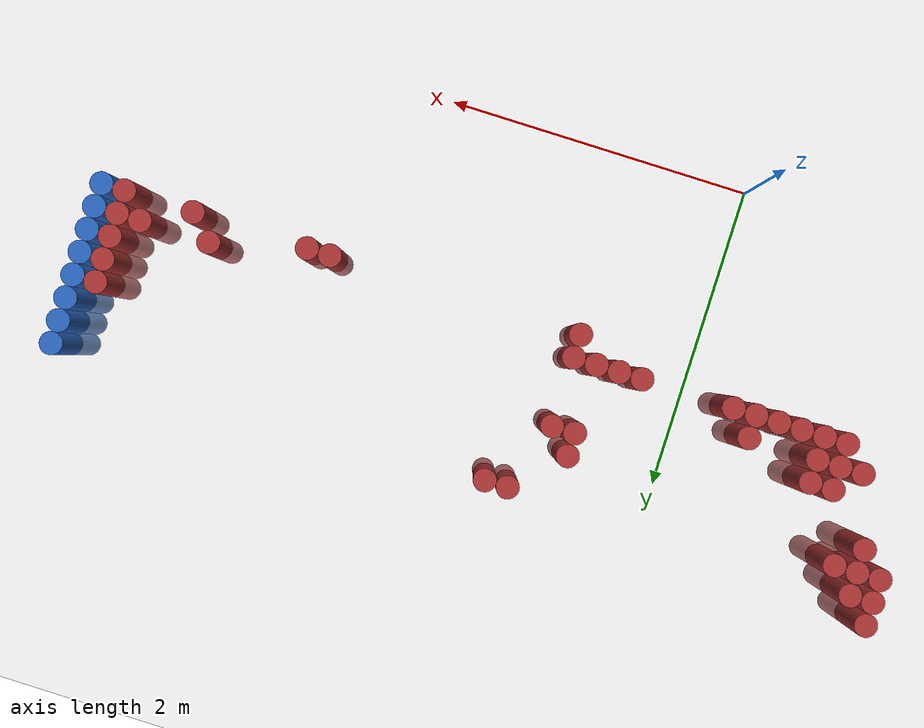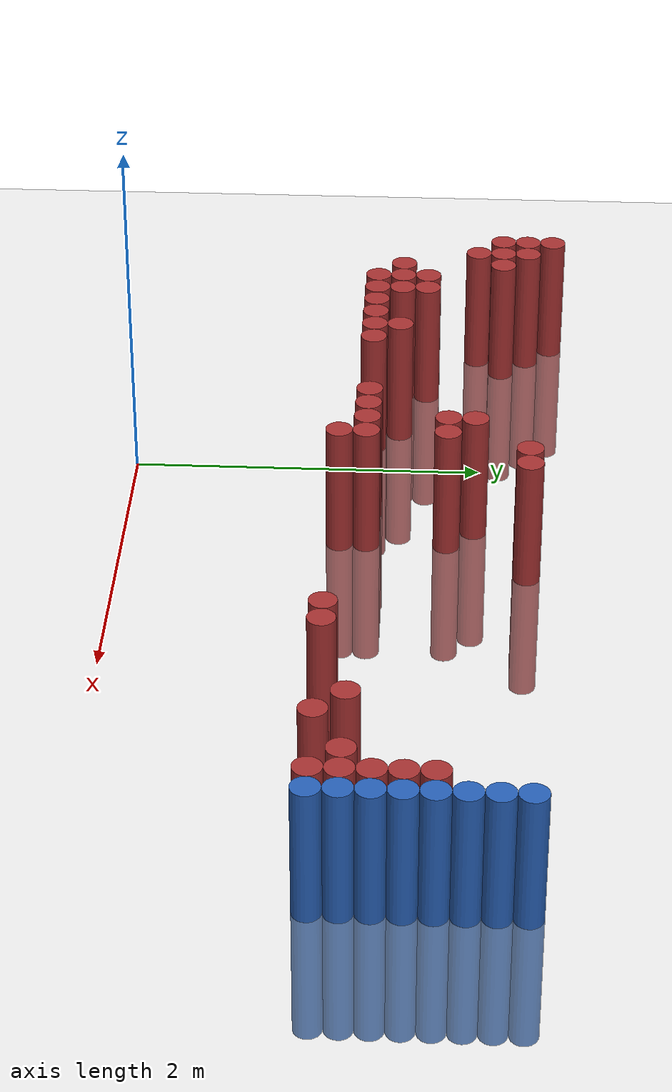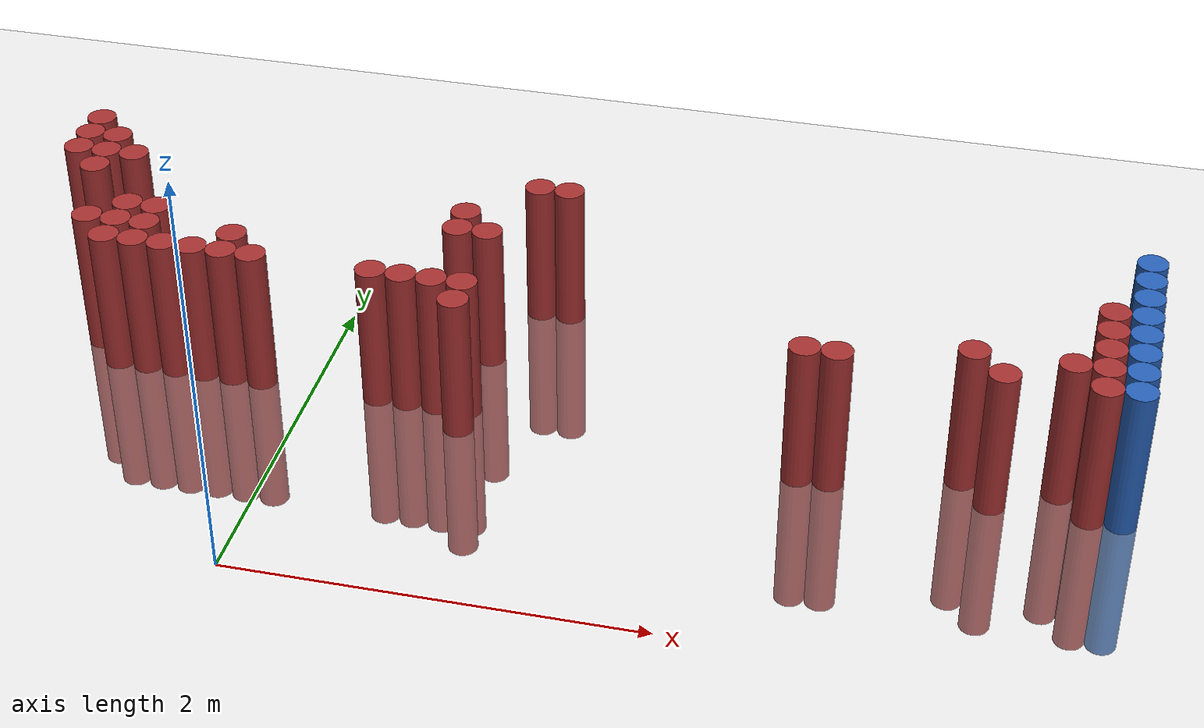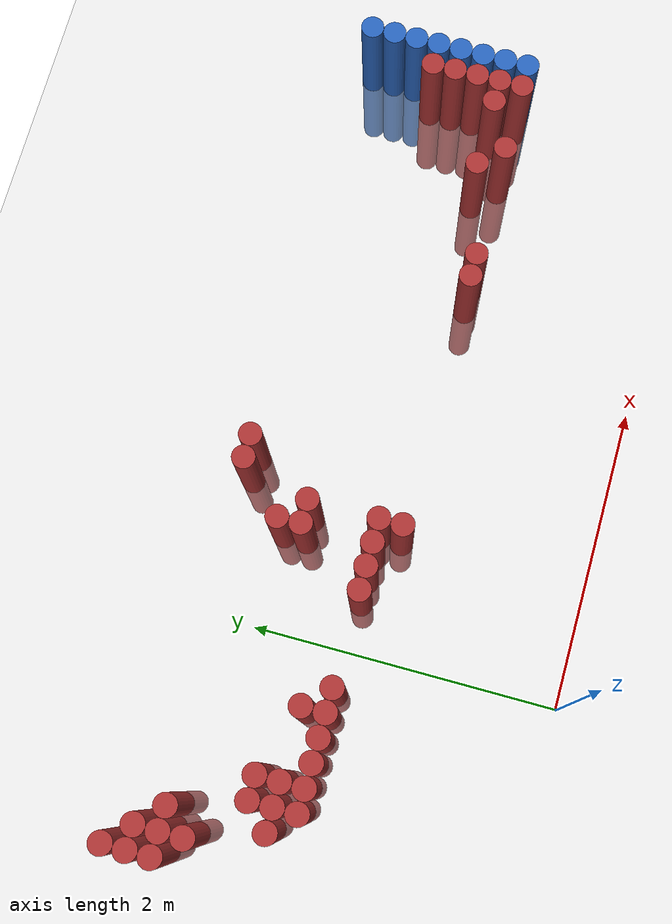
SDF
<sdf version="1.6">
 <world name="default">
  <model name="ground_plane">
   <static>1</static>
   <link name="link">
    <collision name="collision">
     <geometry><plane><normal>0 0 1</normal><size>100 100</size></plane></geometry>
     <surface><friction><ode><mu>100</mu><mu2>50</mu2></ode></friction></surface>
    </collision>
    <visual name="visual">
     <cast_shadows>0</cast_shadows>
     <geometry><plane><normal>0 0 1</normal><size>100 100</size></plane></geometry>
     <material>
      <script><uri>file://media/materials/scripts/gazebo.material</uri><name>Gazebo/Grey</name></script>
     </material>
    </visual>
   </link>
  </model>
  <model name="unit_cylinder_132">
   <static>1</static>
   <pose>3.925000 1.375000 0.000000 0.000000 0.000000 0.000000</pose>
   <link name="link">
    <inertial>
     <mass>1</mass>
     <inertia><ixx>0.145833</ixx><ixy>0</ixy><ixz>0</ixz><iyy>0.145833</iyy><iyz>0</iyz><izz>0.125</izz></inertia>
    </inertial>
    <collision name="collision">
     <geometry><cylinder><radius>0.075000</radius><length>1.5</length></cylinder></geometry>
    </collision>
    <visual name="visual">
     <geometry><cylinder><radius>0.075000</radius><length>1.5</length></cylinder></geometry>
     <material>
      <ambient>0.152000 0.379000 0.720000 1</ambient>
      <diffuse>0.152000 0.379000 0.720000 1</diffuse>
     </material>
     <material>
      <script><name>Gazebo/Grey</name><uri>file://media/materials/scripts/gazebo.material</uri></script>
     </material>
    </visual>
   </link>
  </model>
  <model name="unit_cylinder_134">
   <static>1</static>
   <pose>3.925000 1.525000 0.000000 0.000000 0.000000 0.000000</pose>
   <link name="link">
    <inertial>
     <mass>1</mass>
     <inertia><ixx>0.145833</ixx><ixy>0</ixy><ixz>0</ixz><iyy>0.145833</iyy><iyz>0</iyz><izz>0.125</izz></inertia>
    </inertial>
    <collision name="collision">
     <geometry><cylinder><radius>0.075000</radius><length>1.5</length></cylinder></geometry>
    </collision>
    <visual name="visual">
     <geometry><cylinder><radius>0.075000</radius><length>1.5</length></cylinder></geometry>
     <material>
      <ambient>0.152000 0.379000 0.720000 1</ambient>
      <diffuse>0.152000 0.379000 0.720000 1</diffuse>
     </material>
     <material>
      <script><name>Gazebo/Grey</name><uri>file://media/materials/scripts/gazebo.material</uri></script>
     </material>
    </visual>
   </link>
  </model>
  <model name="unit_cylinder_136">
   <static>1</static>
   <pose>3.925000 1.675000 0.000000 0.000000 0.000000 0.000000</pose>
   <link name="link">
    <inertial>
     <mass>1</mass>
     <inertia><ixx>0.145833</ixx><ixy>0</ixy><ixz>0</ixz><iyy>0.145833</iyy><iyz>0</iyz><izz>0.125</izz></inertia>
    </inertial>
    <collision name="collision">
     <geometry><cylinder><radius>0.075000</radius><length>1.5</length></cylinder></geometry>
    </collision>
    <visual name="visual">
     <geometry><cylinder><radius>0.075000</radius><length>1.5</length></cylinder></geometry>
     <material>
      <ambient>0.152000 0.379000 0.720000 1</ambient>
      <diffuse>0.152000 0.379000 0.720000 1</diffuse>
     </material>
     <material>
      <script><name>Gazebo/Grey</name><uri>file://media/materials/scripts/gazebo.material</uri></script>
     </material>
    </visual>
   </link>
  </model>
  <model name="unit_cylinder_138">
   <static>1</static>
   <pose>3.925000 1.825000 0.000000 0.000000 0.000000 0.000000</pose>
   <link name="link">
    <inertial>
     <mass>1</mass>
     <inertia><ixx>0.145833</ixx><ixy>0</ixy><ixz>0</ixz><iyy>0.145833</iyy><iyz>0</iyz><izz>0.125</izz></inertia>
    </inertial>
    <collision name="collision">
     <geometry><cylinder><radius>0.075000</radius><length>1.5</length></cylinder></geometry>
    </collision>
    <visual name="visual">
     <geometry><cylinder><radius>0.075000</radius><length>1.5</length></cylinder></geometry>
     <material>
      <ambient>0.152000 0.379000 0.720000 1</ambient>
      <diffuse>0.152000 0.379000 0.720000 1</diffuse>
     </material>
     <material>
      <script><name>Gazebo/Grey</name><uri>file://media/materials/scripts/gazebo.material</uri></script>
     </material>
    </visual>
   </link>
  </model>
  <model name="unit_cylinder_140">
   <static>1</static>
   <pose>3.925000 1.975000 0.000000 0.000000 0.000000 0.000000</pose>
   <link name="link">
    <inertial>
     <mass>1</mass>
     <inertia><ixx>0.145833</ixx><ixy>0</ixy><ixz>0</ixz><iyy>0.145833</iyy><iyz>0</iyz><izz>0.125</izz></inertia>
    </inertial>
    <collision name="collision">
     <geometry><cylinder><radius>0.075000</radius><length>1.5</length></cylinder></geometry>
    </collision>
    <visual name="visual">
     <geometry><cylinder><radius>0.075000</radius><length>1.5</length></cylinder></geometry>
     <material>
      <ambient>0.152000 0.379000 0.720000 1</ambient>
      <diffuse>0.152000 0.379000 0.720000 1</diffuse>
     </material>
     <material>
      <script><name>Gazebo/Grey</name><uri>file://media/materials/scripts/gazebo.material</uri></script>
     </material>
    </visual>
   </link>
  </model>
  <model name="unit_cylinder_142">
   <static>1</static>
   <pose>3.925000 2.125000 0.000000 0.000000 0.000000 0.000000</pose>
   <link name="link">
    <inertial>
     <mass>1</mass>
     <inertia><ixx>0.145833</ixx><ixy>0</ixy><ixz>0</ixz><iyy>0.145833</iyy><iyz>0</iyz><izz>0.125</izz></inertia>
    </inertial>
    <collision name="collision">
     <geometry><cylinder><radius>0.075000</radius><length>1.5</length></cylinder></geometry>
    </collision>
    <visual name="visual">
     <geometry><cylinder><radius>0.075000</radius><length>1.5</length></cylinder></geometry>
     <material>
      <ambient>0.152000 0.379000 0.720000 1</ambient>
      <diffuse>0.152000 0.379000 0.720000 1</diffuse>
     </material>
     <material>
      <script><name>Gazebo/Grey</name><uri>file://media/materials/scripts/gazebo.material</uri></script>
     </material>
    </visual>
   </link>
  </model>
  <model name="unit_cylinder_144">
   <static>1</static>
   <pose>3.925000 2.275000 0.000000 0.000000 0.000000 0.000000</pose>
   <link name="link">
    <inertial>
     <mass>1</mass>
     <inertia><ixx>0.145833</ixx><ixy>0</ixy><ixz>0</ixz><iyy>0.145833</iyy><iyz>0</iyz><izz>0.125</izz></inertia>
    </inertial>
    <collision name="collision">
     <geometry><cylinder><radius>0.075000</radius><length>1.5</length></cylinder></geometry>
    </collision>
    <visual name="visual">
     <geometry><cylinder><radius>0.075000</radius><length>1.5</length></cylinder></geometry>
     <material>
      <ambient>0.152000 0.379000 0.720000 1</ambient>
      <diffuse>0.152000 0.379000 0.720000 1</diffuse>
     </material>
     <material>
      <script><name>Gazebo/Grey</name><uri>file://media/materials/scripts/gazebo.material</uri></script>
     </material>
    </visual>
   </link>
  </model>
  <model name="unit_cylinder_320">
   <static>1</static>
   <pose>-1.475000 2.125000 0.000000 0.000000 0.000000 0.000000</pose>
   <link name="link">
    <inertial>
     <mass>1</mass>
     <inertia><ixx>0.145833</ixx><ixy>0</ixy><ixz>0</ixz><iyy>0.145833</iyy><iyz>0</iyz><izz>0.125</izz></inertia>
    </inertial>
    <collision name="collision">
     <geometry><cylinder><radius>0.075000</radius><length>1.5</length></cylinder></geometry>
    </collision>
    <visual name="visual">
     <geometry><cylinder><radius>0.075000</radius><length>1.5</length></cylinder></geometry>
     <material>
      <ambient>0.648000 0.192000 0.192000 1</ambient>
      <diffuse>0.648000 0.192000 0.192000 1</diffuse>
     </material>
     <material>
      <script><name>Gazebo/Grey</name><uri>file://media/materials/scripts/gazebo.material</uri></script>
     </material>
    </visual>
   </link>
  </model>
  <model name="unit_cylinder_321">
   <static>1</static>
   <pose>-1.475000 2.275000 0.000000 0.000000 0.000000 0.000000</pose>
   <link name="link">
    <inertial>
     <mass>1</mass>
     <inertia><ixx>0.145833</ixx><ixy>0</ixy><ixz>0</ixz><iyy>0.145833</iyy><iyz>0</iyz><izz>0.125</izz></inertia>
    </inertial>
    <collision name="collision">
     <geometry><cylinder><radius>0.075000</radius><length>1.5</length></cylinder></geometry>
    </collision>
    <visual name="visual">
     <geometry><cylinder><radius>0.075000</radius><length>1.5</length></cylinder></geometry>
     <material>
      <ambient>0.648000 0.192000 0.192000 1</ambient>
      <diffuse>0.648000 0.192000 0.192000 1</diffuse>
     </material>
     <material>
      <script><name>Gazebo/Grey</name><uri>file://media/materials/scripts/gazebo.material</uri></script>
     </material>
    </visual>
   </link>
  </model>
  <model name="unit_cylinder_322">
   <static>1</static>
   <pose>-1.475000 2.425000 0.000000 0.000000 0.000000 0.000000</pose>
   <link name="link">
    <inertial>
     <mass>1</mass>
     <inertia><ixx>0.145833</ixx><ixy>0</ixy><ixz>0</ixz><iyy>0.145833</iyy><iyz>0</iyz><izz>0.125</izz></inertia>
    </inertial>
    <collision name="collision">
     <geometry><cylinder><radius>0.075000</radius><length>1.5</length></cylinder></geometry>
    </collision>
    <visual name="visual">
     <geometry><cylinder><radius>0.075000</radius><length>1.5</length></cylinder></geometry>
     <material>
      <ambient>0.648000 0.192000 0.192000 1</ambient>
      <diffuse>0.648000 0.192000 0.192000 1</diffuse>
     </material>
     <material>
      <script><name>Gazebo/Grey</name><uri>file://media/materials/scripts/gazebo.material</uri></script>
     </material>
    </visual>
   </link>
  </model>
  <model name="unit_cylinder_325">
   <static>1</static>
   <pose>-1.325000 1.975000 0.000000 0.000000 0.000000 0.000000</pose>
   <link name="link">
    <inertial>
     <mass>1</mass>
     <inertia><ixx>0.145833</ixx><ixy>0</ixy><ixz>0</ixz><iyy>0.145833</iyy><iyz>0</iyz><izz>0.125</izz></inertia>
    </inertial>
    <collision name="collision">
     <geometry><cylinder><radius>0.075000</radius><length>1.5</length></cylinder></geometry>
    </collision>
    <visual name="visual">
     <geometry><cylinder><radius>0.075000</radius><length>1.5</length></cylinder></geometry>
     <material>
      <ambient>0.648000 0.192000 0.192000 1</ambient>
      <diffuse>0.648000 0.192000 0.192000 1</diffuse>
     </material>
     <material>
      <script><name>Gazebo/Grey</name><uri>file://media/materials/scripts/gazebo.material</uri></script>
     </material>
    </visual>
   </link>
  </model>
  <model name="unit_cylinder_326">
   <static>1</static>
   <pose>-1.325000 2.125000 0.000000 0.000000 0.000000 0.000000</pose>
   <link name="link">
    <inertial>
     <mass>1</mass>
     <inertia><ixx>0.145833</ixx><ixy>0</ixy><ixz>0</ixz><iyy>0.145833</iyy><iyz>0</iyz><izz>0.125</izz></inertia>
    </inertial>
    <collision name="collision">
     <geometry><cylinder><radius>0.075000</radius><length>1.5</length></cylinder></geometry>
    </collision>
    <visual name="visual">
     <geometry><cylinder><radius>0.075000</radius><length>1.5</length></cylinder></geometry>
     <material>
      <ambient>0.648000 0.192000 0.192000 1</ambient>
      <diffuse>0.648000 0.192000 0.192000 1</diffuse>
     </material>
     <material>
      <script><name>Gazebo/Grey</name><uri>file://media/materials/scripts/gazebo.material</uri></script>
     </material>
    </visual>
   </link>
  </model>
  <model name="unit_cylinder_327">
   <static>1</static>
   <pose>-1.325000 2.275000 0.000000 0.000000 0.000000 0.000000</pose>
   <link name="link">
    <inertial>
     <mass>1</mass>
     <inertia><ixx>0.145833</ixx><ixy>0</ixy><ixz>0</ixz><iyy>0.145833</iyy><iyz>0</iyz><izz>0.125</izz></inertia>
    </inertial>
    <collision name="collision">
     <geometry><cylinder><radius>0.075000</radius><length>1.5</length></cylinder></geometry>
    </collision>
    <visual name="visual">
     <geometry><cylinder><radius>0.075000</radius><length>1.5</length></cylinder></geometry>
     <material>
      <ambient>0.648000 0.192000 0.192000 1</ambient>
      <diffuse>0.648000 0.192000 0.192000 1</diffuse>
     </material>
     <material>
      <script><name>Gazebo/Grey</name><uri>file://media/materials/scripts/gazebo.material</uri></script>
     </material>
    </visual>
   </link>
  </model>
  <model name="unit_cylinder_330">
   <static>1</static>
   <pose>-1.175000 1.525000 0.000000 0.000000 0.000000 0.000000</pose>
   <link name="link">
    <inertial>
     <mass>1</mass>
     <inertia><ixx>0.145833</ixx><ixy>0</ixy><ixz>0</ixz><iyy>0.145833</iyy><iyz>0</iyz><izz>0.125</izz></inertia>
    </inertial>
    <collision name="collision">
     <geometry><cylinder><radius>0.075000</radius><length>1.5</length></cylinder></geometry>
    </collision>
    <visual name="visual">
     <geometry><cylinder><radius>0.075000</radius><length>1.5</length></cylinder></geometry>
     <material>
      <ambient>0.648000 0.192000 0.192000 1</ambient>
      <diffuse>0.648000 0.192000 0.192000 1</diffuse>
     </material>
     <material>
      <script><name>Gazebo/Grey</name><uri>file://media/materials/scripts/gazebo.material</uri></script>
     </material>
    </visual>
   </link>
  </model>
  <model name="unit_cylinder_331">
   <static>1</static>
   <pose>-1.175000 2.125000 0.000000 0.000000 0.000000 0.000000</pose>
   <link name="link">
    <inertial>
     <mass>1</mass>
     <inertia><ixx>0.145833</ixx><ixy>0</ixy><ixz>0</ixz><iyy>0.145833</iyy><iyz>0</iyz><izz>0.125</izz></inertia>
    </inertial>
    <collision name="collision">
     <geometry><cylinder><radius>0.075000</radius><length>1.5</length></cylinder></geometry>
    </collision>
    <visual name="visual">
     <geometry><cylinder><radius>0.075000</radius><length>1.5</length></cylinder></geometry>
     <material>
      <ambient>0.648000 0.192000 0.192000 1</ambient>
      <diffuse>0.648000 0.192000 0.192000 1</diffuse>
     </material>
     <material>
      <script><name>Gazebo/Grey</name><uri>file://media/materials/scripts/gazebo.material</uri></script>
     </material>
    </visual>
   </link>
  </model>
  <model name="unit_cylinder_336">
   <static>1</static>
   <pose>-1.025000 1.375000 0.000000 0.000000 0.000000 0.000000</pose>
   <link name="link">
    <inertial>
     <mass>1</mass>
     <inertia><ixx>0.145833</ixx><ixy>0</ixy><ixz>0</ixz><iyy>0.145833</iyy><iyz>0</iyz><izz>0.125</izz></inertia>
    </inertial>
    <collision name="collision">
     <geometry><cylinder><radius>0.075000</radius><length>1.5</length></cylinder></geometry>
    </collision>
    <visual name="visual">
     <geometry><cylinder><radius>0.075000</radius><length>1.5</length></cylinder></geometry>
     <material>
      <ambient>0.648000 0.192000 0.192000 1</ambient>
      <diffuse>0.648000 0.192000 0.192000 1</diffuse>
     </material>
     <material>
      <script><name>Gazebo/Grey</name><uri>file://media/materials/scripts/gazebo.material</uri></script>
     </material>
    </visual>
   </link>
  </model>
  <model name="unit_cylinder_337">
   <static>1</static>
   <pose>-1.025000 1.525000 0.000000 0.000000 0.000000 0.000000</pose>
   <link name="link">
    <inertial>
     <mass>1</mass>
     <inertia><ixx>0.145833</ixx><ixy>0</ixy><ixz>0</ixz><iyy>0.145833</iyy><iyz>0</iyz><izz>0.125</izz></inertia>
    </inertial>
    <collision name="collision">
     <geometry><cylinder><radius>0.075000</radius><length>1.5</length></cylinder></geometry>
    </collision>
    <visual name="visual">
     <geometry><cylinder><radius>0.075000</radius><length>1.5</length></cylinder></geometry>
     <material>
      <ambient>0.648000 0.192000 0.192000 1</ambient>
      <diffuse>0.648000 0.192000 0.192000 1</diffuse>
     </material>
     <material>
      <script><name>Gazebo/Grey</name><uri>file://media/materials/scripts/gazebo.material</uri></script>
     </material>
    </visual>
   </link>
  </model>
  <model name="unit_cylinder_338">
   <static>1</static>
   <pose>-1.025000 1.675000 0.000000 0.000000 0.000000 0.000000</pose>
   <link name="link">
    <inertial>
     <mass>1</mass>
     <inertia><ixx>0.145833</ixx><ixy>0</ixy><ixz>0</ixz><iyy>0.145833</iyy><iyz>0</iyz><izz>0.125</izz></inertia>
    </inertial>
    <collision name="collision">
     <geometry><cylinder><radius>0.075000</radius><length>1.5</length></cylinder></geometry>
    </collision>
    <visual name="visual">
     <geometry><cylinder><radius>0.075000</radius><length>1.5</length></cylinder></geometry>
     <material>
      <ambient>0.648000 0.192000 0.192000 1</ambient>
      <diffuse>0.648000 0.192000 0.192000 1</diffuse>
     </material>
     <material>
      <script><name>Gazebo/Grey</name><uri>file://media/materials/scripts/gazebo.material</uri></script>
     </material>
    </visual>
   </link>
  </model>
  <model name="unit_cylinder_343">
   <static>1</static>
   <pose>-0.875000 1.375000 0.000000 0.000000 0.000000 0.000000</pose>
   <link name="link">
    <inertial>
     <mass>1</mass>
     <inertia><ixx>0.145833</ixx><ixy>0</ixy><ixz>0</ixz><iyy>0.145833</iyy><iyz>0</iyz><izz>0.125</izz></inertia>
    </inertial>
    <collision name="collision">
     <geometry><cylinder><radius>0.075000</radius><length>1.5</length></cylinder></geometry>
    </collision>
    <visual name="visual">
     <geometry><cylinder><radius>0.075000</radius><length>1.5</length></cylinder></geometry>
     <material>
      <ambient>0.648000 0.192000 0.192000 1</ambient>
      <diffuse>0.648000 0.192000 0.192000 1</diffuse>
     </material>
     <material>
      <script><name>Gazebo/Grey</name><uri>file://media/materials/scripts/gazebo.material</uri></script>
     </material>
    </visual>
   </link>
  </model>
  <model name="unit_cylinder_344">
   <static>1</static>
   <pose>-0.875000 1.525000 0.000000 0.000000 0.000000 0.000000</pose>
   <link name="link">
    <inertial>
     <mass>1</mass>
     <inertia><ixx>0.145833</ixx><ixy>0</ixy><ixz>0</ixz><iyy>0.145833</iyy><iyz>0</iyz><izz>0.125</izz></inertia>
    </inertial>
    <collision name="collision">
     <geometry><cylinder><radius>0.075000</radius><length>1.5</length></cylinder></geometry>
    </collision>
    <visual name="visual">
     <geometry><cylinder><radius>0.075000</radius><length>1.5</length></cylinder></geometry>
     <material>
      <ambient>0.648000 0.192000 0.192000 1</ambient>
      <diffuse>0.648000 0.192000 0.192000 1</diffuse>
     </material>
     <material>
      <script><name>Gazebo/Grey</name><uri>file://media/materials/scripts/gazebo.material</uri></script>
     </material>
    </visual>
   </link>
  </model>
  <model name="unit_cylinder_345">
   <static>1</static>
   <pose>-0.875000 1.675000 0.000000 0.000000 0.000000 0.000000</pose>
   <link name="link">
    <inertial>
     <mass>1</mass>
     <inertia><ixx>0.145833</ixx><ixy>0</ixy><ixz>0</ixz><iyy>0.145833</iyy><iyz>0</iyz><izz>0.125</izz></inertia>
    </inertial>
    <collision name="collision">
     <geometry><cylinder><radius>0.075000</radius><length>1.5</length></cylinder></geometry>
    </collision>
    <visual name="visual">
     <geometry><cylinder><radius>0.075000</radius><length>1.5</length></cylinder></geometry>
     <material>
      <ambient>0.648000 0.192000 0.192000 1</ambient>
      <diffuse>0.648000 0.192000 0.192000 1</diffuse>
     </material>
     <material>
      <script><name>Gazebo/Grey</name><uri>file://media/materials/scripts/gazebo.material</uri></script>
     </material>
    </visual>
   </link>
  </model>
  <model name="unit_cylinder_350">
   <static>1</static>
   <pose>-0.725000 1.375000 0.000000 0.000000 0.000000 0.000000</pose>
   <link name="link">
    <inertial>
     <mass>1</mass>
     <inertia><ixx>0.145833</ixx><ixy>0</ixy><ixz>0</ixz><iyy>0.145833</iyy><iyz>0</iyz><izz>0.125</izz></inertia>
    </inertial>
    <collision name="collision">
     <geometry><cylinder><radius>0.075000</radius><length>1.5</length></cylinder></geometry>
    </collision>
    <visual name="visual">
     <geometry><cylinder><radius>0.075000</radius><length>1.5</length></cylinder></geometry>
     <material>
      <ambient>0.648000 0.192000 0.192000 1</ambient>
      <diffuse>0.648000 0.192000 0.192000 1</diffuse>
     </material>
     <material>
      <script><name>Gazebo/Grey</name><uri>file://media/materials/scripts/gazebo.material</uri></script>
     </material>
    </visual>
   </link>
  </model>
  <model name="unit_cylinder_359">
   <static>1</static>
   <pose>-0.575000 1.375000 0.000000 0.000000 0.000000 0.000000</pose>
   <link name="link">
    <inertial>
     <mass>1</mass>
     <inertia><ixx>0.145833</ixx><ixy>0</ixy><ixz>0</ixz><iyy>0.145833</iyy><iyz>0</iyz><izz>0.125</izz></inertia>
    </inertial>
    <collision name="collision">
     <geometry><cylinder><radius>0.075000</radius><length>1.5</length></cylinder></geometry>
    </collision>
    <visual name="visual">
     <geometry><cylinder><radius>0.075000</radius><length>1.5</length></cylinder></geometry>
     <material>
      <ambient>0.648000 0.192000 0.192000 1</ambient>
      <diffuse>0.648000 0.192000 0.192000 1</diffuse>
     </material>
     <material>
      <script><name>Gazebo/Grey</name><uri>file://media/materials/scripts/gazebo.material</uri></script>
     </material>
    </visual>
   </link>
  </model>
  <model name="unit_cylinder_366">
   <static>1</static>
   <pose>-0.425000 1.375000 0.000000 0.000000 0.000000 0.000000</pose>
   <link name="link">
    <inertial>
     <mass>1</mass>
     <inertia><ixx>0.145833</ixx><ixy>0</ixy><ixz>0</ixz><iyy>0.145833</iyy><iyz>0</iyz><izz>0.125</izz></inertia>
    </inertial>
    <collision name="collision">
     <geometry><cylinder><radius>0.075000</radius><length>1.5</length></cylinder></geometry>
    </collision>
    <visual name="visual">
     <geometry><cylinder><radius>0.075000</radius><length>1.5</length></cylinder></geometry>
     <material>
      <ambient>0.648000 0.192000 0.192000 1</ambient>
      <diffuse>0.648000 0.192000 0.192000 1</diffuse>
     </material>
     <material>
      <script><name>Gazebo/Grey</name><uri>file://media/materials/scripts/gazebo.material</uri></script>
     </material>
    </visual>
   </link>
  </model>
  <model name="unit_cylinder_367">
   <static>1</static>
   <pose>-0.425000 1.525000 0.000000 0.000000 0.000000 0.000000</pose>
   <link name="link">
    <inertial>
     <mass>1</mass>
     <inertia><ixx>0.145833</ixx><ixy>0</ixy><ixz>0</ixz><iyy>0.145833</iyy><iyz>0</iyz><izz>0.125</izz></inertia>
    </inertial>
    <collision name="collision">
     <geometry><cylinder><radius>0.075000</radius><length>1.5</length></cylinder></geometry>
    </collision>
    <visual name="visual">
     <geometry><cylinder><radius>0.075000</radius><length>1.5</length></cylinder></geometry>
     <material>
      <ambient>0.648000 0.192000 0.192000 1</ambient>
      <diffuse>0.648000 0.192000 0.192000 1</diffuse>
     </material>
     <material>
      <script><name>Gazebo/Grey</name><uri>file://media/materials/scripts/gazebo.material</uri></script>
     </material>
    </visual>
   </link>
  </model>
  <model name="unit_cylinder_370">
   <static>1</static>
   <pose>-0.275000 1.375000 0.000000 0.000000 0.000000 0.000000</pose>
   <link name="link">
    <inertial>
     <mass>1</mass>
     <inertia><ixx>0.145833</ixx><ixy>0</ixy><ixz>0</ixz><iyy>0.145833</iyy><iyz>0</iyz><izz>0.125</izz></inertia>
    </inertial>
    <collision name="collision">
     <geometry><cylinder><radius>0.075000</radius><length>1.5</length></cylinder></geometry>
    </collision>
    <visual name="visual">
     <geometry><cylinder><radius>0.075000</radius><length>1.5</length></cylinder></geometry>
     <material>
      <ambient>0.648000 0.192000 0.192000 1</ambient>
      <diffuse>0.648000 0.192000 0.192000 1</diffuse>
     </material>
     <material>
      <script><name>Gazebo/Grey</name><uri>file://media/materials/scripts/gazebo.material</uri></script>
     </material>
    </visual>
   </link>
  </model>
  <model name="unit_cylinder_375">
   <static>1</static>
   <pose>0.325000 1.375000 0.000000 0.000000 0.000000 0.000000</pose>
   <link name="link">
    <inertial>
     <mass>1</mass>
     <inertia><ixx>0.145833</ixx><ixy>0</ixy><ixz>0</ixz><iyy>0.145833</iyy><iyz>0</iyz><izz>0.125</izz></inertia>
    </inertial>
    <collision name="collision">
     <geometry><cylinder><radius>0.075000</radius><length>1.5</length></cylinder></geometry>
    </collision>
    <visual name="visual">
     <geometry><cylinder><radius>0.075000</radius><length>1.5</length></cylinder></geometry>
     <material>
      <ambient>0.648000 0.192000 0.192000 1</ambient>
      <diffuse>0.648000 0.192000 0.192000 1</diffuse>
     </material>
     <material>
      <script><name>Gazebo/Grey</name><uri>file://media/materials/scripts/gazebo.material</uri></script>
     </material>
    </visual>
   </link>
  </model>
  <model name="unit_cylinder_378">
   <static>1</static>
   <pose>0.475000 1.375000 0.000000 0.000000 0.000000 0.000000</pose>
   <link name="link">
    <inertial>
     <mass>1</mass>
     <inertia><ixx>0.145833</ixx><ixy>0</ixy><ixz>0</ixz><iyy>0.145833</iyy><iyz>0</iyz><izz>0.125</izz></inertia>
    </inertial>
    <collision name="collision">
     <geometry><cylinder><radius>0.075000</radius><length>1.5</length></cylinder></geometry>
    </collision>
    <visual name="visual">
     <geometry><cylinder><radius>0.075000</radius><length>1.5</length></cylinder></geometry>
     <material>
      <ambient>0.648000 0.192000 0.192000 1</ambient>
      <diffuse>0.648000 0.192000 0.192000 1</diffuse>
     </material>
     <material>
      <script><name>Gazebo/Grey</name><uri>file://media/materials/scripts/gazebo.material</uri></script>
     </material>
    </visual>
   </link>
  </model>
  <model name="unit_cylinder_382">
   <static>1</static>
   <pose>0.625000 1.375000 0.000000 0.000000 0.000000 0.000000</pose>
   <link name="link">
    <inertial>
     <mass>1</mass>
     <inertia><ixx>0.145833</ixx><ixy>0</ixy><ixz>0</ixz><iyy>0.145833</iyy><iyz>0</iyz><izz>0.125</izz></inertia>
    </inertial>
    <collision name="collision">
     <geometry><cylinder><radius>0.075000</radius><length>1.5</length></cylinder></geometry>
    </collision>
    <visual name="visual">
     <geometry><cylinder><radius>0.075000</radius><length>1.5</length></cylinder></geometry>
     <material>
      <ambient>0.648000 0.192000 0.192000 1</ambient>
      <diffuse>0.648000 0.192000 0.192000 1</diffuse>
     </material>
     <material>
      <script><name>Gazebo/Grey</name><uri>file://media/materials/scripts/gazebo.material</uri></script>
     </material>
    </visual>
   </link>
  </model>
  <model name="unit_cylinder_383">
   <static>1</static>
   <pose>0.625000 1.825000 0.000000 0.000000 0.000000 0.000000</pose>
   <link name="link">
    <inertial>
     <mass>1</mass>
     <inertia><ixx>0.145833</ixx><ixy>0</ixy><ixz>0</ixz><iyy>0.145833</iyy><iyz>0</iyz><izz>0.125</izz></inertia>
    </inertial>
    <collision name="collision">
     <geometry><cylinder><radius>0.075000</radius><length>1.5</length></cylinder></geometry>
    </collision>
    <visual name="visual">
     <geometry><cylinder><radius>0.075000</radius><length>1.5</length></cylinder></geometry>
     <material>
      <ambient>0.648000 0.192000 0.192000 1</ambient>
      <diffuse>0.648000 0.192000 0.192000 1</diffuse>
     </material>
     <material>
      <script><name>Gazebo/Grey</name><uri>file://media/materials/scripts/gazebo.material</uri></script>
     </material>
    </visual>
   </link>
  </model>
  <model name="unit_cylinder_384">
   <static>1</static>
   <pose>0.625000 1.975000 0.000000 0.000000 0.000000 0.000000</pose>
   <link name="link">
    <inertial>
     <mass>1</mass>
     <inertia><ixx>0.145833</ixx><ixy>0</ixy><ixz>0</ixz><iyy>0.145833</iyy><iyz>0</iyz><izz>0.125</izz></inertia>
    </inertial>
    <collision name="collision">
     <geometry><cylinder><radius>0.075000</radius><length>1.5</length></cylinder></geometry>
    </collision>
    <visual name="visual">
     <geometry><cylinder><radius>0.075000</radius><length>1.5</length></cylinder></geometry>
     <material>
      <ambient>0.648000 0.192000 0.192000 1</ambient>
      <diffuse>0.648000 0.192000 0.192000 1</diffuse>
     </material>
     <material>
      <script><name>Gazebo/Grey</name><uri>file://media/materials/scripts/gazebo.material</uri></script>
     </material>
    </visual>
   </link>
  </model>
  <model name="unit_cylinder_385">
   <static>1</static>
   <pose>0.775000 1.225000 0.000000 0.000000 0.000000 0.000000</pose>
   <link name="link">
    <inertial>
     <mass>1</mass>
     <inertia><ixx>0.145833</ixx><ixy>0</ixy><ixz>0</ixz><iyy>0.145833</iyy><iyz>0</iyz><izz>0.125</izz></inertia>
    </inertial>
    <collision name="collision">
     <geometry><cylinder><radius>0.075000</radius><length>1.5</length></cylinder></geometry>
    </collision>
    <visual name="visual">
     <geometry><cylinder><radius>0.075000</radius><length>1.5</length></cylinder></geometry>
     <material>
      <ambient>0.648000 0.192000 0.192000 1</ambient>
      <diffuse>0.648000 0.192000 0.192000 1</diffuse>
     </material>
     <material>
      <script><name>Gazebo/Grey</name><uri>file://media/materials/scripts/gazebo.material</uri></script>
     </material>
    </visual>
   </link>
  </model>
  <model name="unit_cylinder_386">
   <static>1</static>
   <pose>0.775000 1.375000 0.000000 0.000000 0.000000 0.000000</pose>
   <link name="link">
    <inertial>
     <mass>1</mass>
     <inertia><ixx>0.145833</ixx><ixy>0</ixy><ixz>0</ixz><iyy>0.145833</iyy><iyz>0</iyz><izz>0.125</izz></inertia>
    </inertial>
    <collision name="collision">
     <geometry><cylinder><radius>0.075000</radius><length>1.5</length></cylinder></geometry>
    </collision>
    <visual name="visual">
     <geometry><cylinder><radius>0.075000</radius><length>1.5</length></cylinder></geometry>
     <material>
      <ambient>0.648000 0.192000 0.192000 1</ambient>
      <diffuse>0.648000 0.192000 0.192000 1</diffuse>
     </material>
     <material>
      <script><name>Gazebo/Grey</name><uri>file://media/materials/scripts/gazebo.material</uri></script>
     </material>
    </visual>
   </link>
  </model>
  <model name="unit_cylinder_387">
   <static>1</static>
   <pose>0.775000 1.825000 0.000000 0.000000 0.000000 0.000000</pose>
   <link name="link">
    <inertial>
     <mass>1</mass>
     <inertia><ixx>0.145833</ixx><ixy>0</ixy><ixz>0</ixz><iyy>0.145833</iyy><iyz>0</iyz><izz>0.125</izz></inertia>
    </inertial>
    <collision name="collision">
     <geometry><cylinder><radius>0.075000</radius><length>1.5</length></cylinder></geometry>
    </collision>
    <visual name="visual">
     <geometry><cylinder><radius>0.075000</radius><length>1.5</length></cylinder></geometry>
     <material>
      <ambient>0.648000 0.192000 0.192000 1</ambient>
      <diffuse>0.648000 0.192000 0.192000 1</diffuse>
     </material>
     <material>
      <script><name>Gazebo/Grey</name><uri>file://media/materials/scripts/gazebo.material</uri></script>
     </material>
    </visual>
   </link>
  </model>
  <model name="unit_cylinder_388">
   <static>1</static>
   <pose>0.925000 2.275000 0.000000 0.000000 0.000000 0.000000</pose>
   <link name="link">
    <inertial>
     <mass>1</mass>
     <inertia><ixx>0.145833</ixx><ixy>0</ixy><ixz>0</ixz><iyy>0.145833</iyy><iyz>0</iyz><izz>0.125</izz></inertia>
    </inertial>
    <collision name="collision">
     <geometry><cylinder><radius>0.075000</radius><length>1.5</length></cylinder></geometry>
    </collision>
    <visual name="visual">
     <geometry><cylinder><radius>0.075000</radius><length>1.5</length></cylinder></geometry>
     <material>
      <ambient>0.648000 0.192000 0.192000 1</ambient>
      <diffuse>0.648000 0.192000 0.192000 1</diffuse>
     </material>
     <material>
      <script><name>Gazebo/Grey</name><uri>file://media/materials/scripts/gazebo.material</uri></script>
     </material>
    </visual>
   </link>
  </model>
  <model name="unit_cylinder_390">
   <static>1</static>
   <pose>1.075000 2.275000 0.000000 0.000000 0.000000 0.000000</pose>
   <link name="link">
    <inertial>
     <mass>1</mass>
     <inertia><ixx>0.145833</ixx><ixy>0</ixy><ixz>0</ixz><iyy>0.145833</iyy><iyz>0</iyz><izz>0.125</izz></inertia>
    </inertial>
    <collision name="collision">
     <geometry><cylinder><radius>0.075000</radius><length>1.5</length></cylinder></geometry>
    </collision>
    <visual name="visual">
     <geometry><cylinder><radius>0.075000</radius><length>1.5</length></cylinder></geometry>
     <material>
      <ambient>0.648000 0.192000 0.192000 1</ambient>
      <diffuse>0.648000 0.192000 0.192000 1</diffuse>
     </material>
     <material>
      <script><name>Gazebo/Grey</name><uri>file://media/materials/scripts/gazebo.material</uri></script>
     </material>
    </visual>
   </link>
  </model>
  <model name="unit_cylinder_414">
   <static>1</static>
   <pose>2.425000 1.225000 0.000000 0.000000 0.000000 0.000000</pose>
   <link name="link">
    <inertial>
     <mass>1</mass>
     <inertia><ixx>0.145833</ixx><ixy>0</ixy><ixz>0</ixz><iyy>0.145833</iyy><iyz>0</iyz><izz>0.125</izz></inertia>
    </inertial>
    <collision name="collision">
     <geometry><cylinder><radius>0.075000</radius><length>1.5</length></cylinder></geometry>
    </collision>
    <visual name="visual">
     <geometry><cylinder><radius>0.075000</radius><length>1.5</length></cylinder></geometry>
     <material>
      <ambient>0.648000 0.192000 0.192000 1</ambient>
      <diffuse>0.648000 0.192000 0.192000 1</diffuse>
     </material>
     <material>
      <script><name>Gazebo/Grey</name><uri>file://media/materials/scripts/gazebo.material</uri></script>
     </material>
    </visual>
   </link>
  </model>
  <model name="unit_cylinder_420">
   <static>1</static>
   <pose>2.575000 1.225000 0.000000 0.000000 0.000000 0.000000</pose>
   <link name="link">
    <inertial>
     <mass>1</mass>
     <inertia><ixx>0.145833</ixx><ixy>0</ixy><ixz>0</ixz><iyy>0.145833</iyy><iyz>0</iyz><izz>0.125</izz></inertia>
    </inertial>
    <collision name="collision">
     <geometry><cylinder><radius>0.075000</radius><length>1.5</length></cylinder></geometry>
    </collision>
    <visual name="visual">
     <geometry><cylinder><radius>0.075000</radius><length>1.5</length></cylinder></geometry>
     <material>
      <ambient>0.648000 0.192000 0.192000 1</ambient>
      <diffuse>0.648000 0.192000 0.192000 1</diffuse>
     </material>
     <material>
      <script><name>Gazebo/Grey</name><uri>file://media/materials/scripts/gazebo.material</uri></script>
     </material>
    </visual>
   </link>
  </model>
  <model name="unit_cylinder_446">
   <static>1</static>
   <pose>3.175000 1.375000 0.000000 0.000000 0.000000 0.000000</pose>
   <link name="link">
    <inertial>
     <mass>1</mass>
     <inertia><ixx>0.145833</ixx><ixy>0</ixy><ixz>0</ixz><iyy>0.145833</iyy><iyz>0</iyz><izz>0.125</izz></inertia>
    </inertial>
    <collision name="collision">
     <geometry><cylinder><radius>0.075000</radius><length>1.5</length></cylinder></geometry>
    </collision>
    <visual name="visual">
     <geometry><cylinder><radius>0.075000</radius><length>1.5</length></cylinder></geometry>
     <material>
      <ambient>0.648000 0.192000 0.192000 1</ambient>
      <diffuse>0.648000 0.192000 0.192000 1</diffuse>
     </material>
     <material>
      <script><name>Gazebo/Grey</name><uri>file://media/materials/scripts/gazebo.material</uri></script>
     </material>
    </visual>
   </link>
  </model>
  <model name="unit_cylinder_454">
   <static>1</static>
   <pose>3.325000 1.225000 0.000000 0.000000 0.000000 0.000000</pose>
   <link name="link">
    <inertial>
     <mass>1</mass>
     <inertia><ixx>0.145833</ixx><ixy>0</ixy><ixz>0</ixz><iyy>0.145833</iyy><iyz>0</iyz><izz>0.125</izz></inertia>
    </inertial>
    <collision name="collision">
     <geometry><cylinder><radius>0.075000</radius><length>1.5</length></cylinder></geometry>
    </collision>
    <visual name="visual">
     <geometry><cylinder><radius>0.075000</radius><length>1.5</length></cylinder></geometry>
     <material>
      <ambient>0.648000 0.192000 0.192000 1</ambient>
      <diffuse>0.648000 0.192000 0.192000 1</diffuse>
     </material>
     <material>
      <script><name>Gazebo/Grey</name><uri>file://media/materials/scripts/gazebo.material</uri></script>
     </material>
    </visual>
   </link>
  </model>
  <model name="unit_cylinder_468">
   <static>1</static>
   <pose>3.625000 1.375000 0.000000 0.000000 0.000000 0.000000</pose>
   <link name="link">
    <inertial>
     <mass>1</mass>
     <inertia><ixx>0.145833</ixx><ixy>0</ixy><ixz>0</ixz><iyy>0.145833</iyy><iyz>0</iyz><izz>0.125</izz></inertia>
    </inertial>
    <collision name="collision">
     <geometry><cylinder><radius>0.075000</radius><length>1.5</length></cylinder></geometry>
    </collision>
    <visual name="visual">
     <geometry><cylinder><radius>0.075000</radius><length>1.5</length></cylinder></geometry>
     <material>
      <ambient>0.648000 0.192000 0.192000 1</ambient>
      <diffuse>0.648000 0.192000 0.192000 1</diffuse>
     </material>
     <material>
      <script><name>Gazebo/Grey</name><uri>file://media/materials/scripts/gazebo.material</uri></script>
     </material>
    </visual>
   </link>
  </model>
  <model name="unit_cylinder_482">
   <static>1</static>
   <pose>3.775000 1.225000 0.000000 0.000000 0.000000 0.000000</pose>
   <link name="link">
    <inertial>
     <mass>1</mass>
     <inertia><ixx>0.145833</ixx><ixy>0</ixy><ixz>0</ixz><iyy>0.145833</iyy><iyz>0</iyz><izz>0.125</izz></inertia>
    </inertial>
    <collision name="collision">
     <geometry><cylinder><radius>0.075000</radius><length>1.5</length></cylinder></geometry>
    </collision>
    <visual name="visual">
     <geometry><cylinder><radius>0.075000</radius><length>1.5</length></cylinder></geometry>
     <material>
      <ambient>0.648000 0.192000 0.192000 1</ambient>
      <diffuse>0.648000 0.192000 0.192000 1</diffuse>
     </material>
     <material>
      <script><name>Gazebo/Grey</name><uri>file://media/materials/scripts/gazebo.material</uri></script>
     </material>
    </visual>
   </link>
  </model>
  <model name="unit_cylinder_483">
   <static>1</static>
   <pose>3.775000 1.375000 0.000000 0.000000 0.000000 0.000000</pose>
   <link name="link">
    <inertial>
     <mass>1</mass>
     <inertia><ixx>0.145833</ixx><ixy>0</ixy><ixz>0</ixz><iyy>0.145833</iyy><iyz>0</iyz><izz>0.125</izz></inertia>
    </inertial>
    <collision name="collision">
     <geometry><cylinder><radius>0.075000</radius><length>1.5</length></cylinder></geometry>
    </collision>
    <visual name="visual">
     <geometry><cylinder><radius>0.075000</radius><length>1.5</length></cylinder></geometry>
     <material>
      <ambient>0.648000 0.192000 0.192000 1</ambient>
      <diffuse>0.648000 0.192000 0.192000 1</diffuse>
     </material>
     <material>
      <script><name>Gazebo/Grey</name><uri>file://media/materials/scripts/gazebo.material</uri></script>
     </material>
    </visual>
   </link>
  </model>
  <model name="unit_cylinder_484">
   <static>1</static>
   <pose>3.775000 1.525000 0.000000 0.000000 0.000000 0.000000</pose>
   <link name="link">
    <inertial>
     <mass>1</mass>
     <inertia><ixx>0.145833</ixx><ixy>0</ixy><ixz>0</ixz><iyy>0.145833</iyy><iyz>0</iyz><izz>0.125</izz></inertia>
    </inertial>
    <collision name="collision">
     <geometry><cylinder><radius>0.075000</radius><length>1.5</length></cylinder></geometry>
    </collision>
    <visual name="visual">
     <geometry><cylinder><radius>0.075000</radius><length>1.5</length></cylinder></geometry>
     <material>
      <ambient>0.648000 0.192000 0.192000 1</ambient>
      <diffuse>0.648000 0.192000 0.192000 1</diffuse>
     </material>
     <material>
      <script><name>Gazebo/Grey</name><uri>file://media/materials/scripts/gazebo.material</uri></script>
     </material>
    </visual>
   </link>
  </model>
  <model name="unit_cylinder_485">
   <static>1</static>
   <pose>3.775000 1.675000 0.000000 0.000000 0.000000 0.000000</pose>
   <link name="link">
    <inertial>
     <mass>1</mass>
     <inertia><ixx>0.145833</ixx><ixy>0</ixy><ixz>0</ixz><iyy>0.145833</iyy><iyz>0</iyz><izz>0.125</izz></inertia>
    </inertial>
    <collision name="collision">
     <geometry><cylinder><radius>0.075000</radius><length>1.5</length></cylinder></geometry>
    </collision>
    <visual name="visual">
     <geometry><cylinder><radius>0.075000</radius><length>1.5</length></cylinder></geometry>
     <material>
      <ambient>0.648000 0.192000 0.192000 1</ambient>
      <diffuse>0.648000 0.192000 0.192000 1</diffuse>
     </material>
     <material>
      <script><name>Gazebo/Grey</name><uri>file://media/materials/scripts/gazebo.material</uri></script>
     </material>
    </visual>
   </link>
  </model>
  <model name="unit_cylinder_486">
   <static>1</static>
   <pose>3.775000 1.825000 0.000000 0.000000 0.000000 0.000000</pose>
   <link name="link">
    <inertial>
     <mass>1</mass>
     <inertia><ixx>0.145833</ixx><ixy>0</ixy><ixz>0</ixz><iyy>0.145833</iyy><iyz>0</iyz><izz>0.125</izz></inertia>
    </inertial>
    <collision name="collision">
     <geometry><cylinder><radius>0.075000</radius><length>1.5</length></cylinder></geometry>
    </collision>
    <visual name="visual">
     <geometry><cylinder><radius>0.075000</radius><length>1.5</length></cylinder></geometry>
     <material>
      <ambient>0.648000 0.192000 0.192000 1</ambient>
      <diffuse>0.648000 0.192000 0.192000 1</diffuse>
     </material>
     <material>
      <script><name>Gazebo/Grey</name><uri>file://media/materials/scripts/gazebo.material</uri></script>
     </material>
    </visual>
   </link>
  </model>
  <model name="unit_cylinder_515">
   <static>1</static>
   <pose>3.925000 1.225000 0.000000 0.000000 0.000000 0.000000</pose>
   <link name="link">
    <inertial>
     <mass>1</mass>
     <inertia><ixx>0.145833</ixx><ixy>0</ixy><ixz>0</ixz><iyy>0.145833</iyy><iyz>0</iyz><izz>0.125</izz></inertia>
    </inertial>
    <collision name="collision">
     <geometry><cylinder><radius>0.075000</radius><length>1.5</length></cylinder></geometry>
    </collision>
    <visual name="visual">
     <geometry><cylinder><radius>0.075000</radius><length>1.5</length></cylinder></geometry>
     <material>
      <ambient>0.152000 0.379000 0.720000 1</ambient>
      <diffuse>0.152000 0.379000 0.720000 1</diffuse>
     </material>
     <material>
      <script><name>Gazebo/Grey</name><uri>file://media/materials/scripts/gazebo.material</uri></script>
     </material>
    </visual>
   </link>
  </model>
  <model name="unit_cylinder_516">
   <static>1</static>
   <pose>3.925000 1.375000 0.000000 0.000000 0.000000 0.000000</pose>
   <link name="link">
    <inertial>
     <mass>1</mass>
     <inertia><ixx>0.145833</ixx><ixy>0</ixy><ixz>0</ixz><iyy>0.145833</iyy><iyz>0</iyz><izz>0.125</izz></inertia>
    </inertial>
    <collision name="collision">
     <geometry><cylinder><radius>0.075000</radius><length>1.5</length></cylinder></geometry>
    </collision>
    <visual name="visual">
     <geometry><cylinder><radius>0.075000</radius><length>1.5</length></cylinder></geometry>
     <material>
      <ambient>0.152000 0.379000 0.720000 1</ambient>
      <diffuse>0.152000 0.379000 0.720000 1</diffuse>
     </material>
     <material>
      <script><name>Gazebo/Grey</name><uri>file://media/materials/scripts/gazebo.material</uri></script>
     </material>
    </visual>
   </link>
  </model>
  <model name="unit_cylinder_517">
   <static>1</static>
   <pose>3.925000 1.525000 0.000000 0.000000 0.000000 0.000000</pose>
   <link name="link">
    <inertial>
     <mass>1</mass>
     <inertia><ixx>0.145833</ixx><ixy>0</ixy><ixz>0</ixz><iyy>0.145833</iyy><iyz>0</iyz><izz>0.125</izz></inertia>
    </inertial>
    <collision name="collision">
     <geometry><cylinder><radius>0.075000</radius><length>1.5</length></cylinder></geometry>
    </collision>
    <visual name="visual">
     <geometry><cylinder><radius>0.075000</radius><length>1.5</length></cylinder></geometry>
     <material>
      <ambient>0.152000 0.379000 0.720000 1</ambient>
      <diffuse>0.152000 0.379000 0.720000 1</diffuse>
     </material>
     <material>
      <script><name>Gazebo/Grey</name><uri>file://media/materials/scripts/gazebo.material</uri></script>
     </material>
    </visual>
   </link>
  </model>
  <model name="unit_cylinder_518">
   <static>1</static>
   <pose>3.925000 1.675000 0.000000 0.000000 0.000000 0.000000</pose>
   <link name="link">
    <inertial>
     <mass>1</mass>
     <inertia><ixx>0.145833</ixx><ixy>0</ixy><ixz>0</ixz><iyy>0.145833</iyy><iyz>0</iyz><izz>0.125</izz></inertia>
    </inertial>
    <collision name="collision">
     <geometry><cylinder><radius>0.075000</radius><length>1.5</length></cylinder></geometry>
    </collision>
    <visual name="visual">
     <geometry><cylinder><radius>0.075000</radius><length>1.5</length></cylinder></geometry>
     <material>
      <ambient>0.152000 0.379000 0.720000 1</ambient>
      <diffuse>0.152000 0.379000 0.720000 1</diffuse>
     </material>
     <material>
      <script><name>Gazebo/Grey</name><uri>file://media/materials/scripts/gazebo.material</uri></script>
     </material>
    </visual>
   </link>
  </model>
  <model name="unit_cylinder_519">
   <static>1</static>
   <pose>3.925000 1.825000 0.000000 0.000000 0.000000 0.000000</pose>
   <link name="link">
    <inertial>
     <mass>1</mass>
     <inertia><ixx>0.145833</ixx><ixy>0</ixy><ixz>0</ixz><iyy>0.145833</iyy><iyz>0</iyz><izz>0.125</izz></inertia>
    </inertial>
    <collision name="collision">
     <geometry><cylinder><radius>0.075000</radius><length>1.5</length></cylinder></geometry>
    </collision>
    <visual name="visual">
     <geometry><cylinder><radius>0.075000</radius><length>1.5</length></cylinder></geometry>
     <material>
      <ambient>0.152000 0.379000 0.720000 1</ambient>
      <diffuse>0.152000 0.379000 0.720000 1</diffuse>
     </material>
     <material>
      <script><name>Gazebo/Grey</name><uri>file://media/materials/scripts/gazebo.material</uri></script>
     </material>
    </visual>
   </link>
  </model>
  <model name="unit_cylinder_520">
   <static>1</static>
   <pose>3.925000 1.975000 0.000000 0.000000 0.000000 0.000000</pose>
   <link name="link">
    <inertial>
     <mass>1</mass>
     <inertia><ixx>0.145833</ixx><ixy>0</ixy><ixz>0</ixz><iyy>0.145833</iyy><iyz>0</iyz><izz>0.125</izz></inertia>
    </inertial>
    <collision name="collision">
     <geometry><cylinder><radius>0.075000</radius><length>1.5</length></cylinder></geometry>
    </collision>
    <visual name="visual">
     <geometry><cylinder><radius>0.075000</radius><length>1.5</length></cylinder></geometry>
     <material>
      <ambient>0.152000 0.379000 0.720000 1</ambient>
      <diffuse>0.152000 0.379000 0.720000 1</diffuse>
     </material>
     <material>
      <script><name>Gazebo/Grey</name><uri>file://media/materials/scripts/gazebo.material</uri></script>
     </material>
    </visual>
   </link>
  </model>
  <model name="unit_cylinder_521">
   <static>1</static>
   <pose>3.925000 2.125000 0.000000 0.000000 0.000000 0.000000</pose>
   <link name="link">
    <inertial>
     <mass>1</mass>
     <inertia><ixx>0.145833</ixx><ixy>0</ixy><ixz>0</ixz><iyy>0.145833</iyy><iyz>0</iyz><izz>0.125</izz></inertia>
    </inertial>
    <collision name="collision">
     <geometry><cylinder><radius>0.075000</radius><length>1.5</length></cylinder></geometry>
    </collision>
    <visual name="visual">
     <geometry><cylinder><radius>0.075000</radius><length>1.5</length></cylinder></geometry>
     <material>
      <ambient>0.152000 0.379000 0.720000 1</ambient>
      <diffuse>0.152000 0.379000 0.720000 1</diffuse>
     </material>
     <material>
      <script><name>Gazebo/Grey</name><uri>file://media/materials/scripts/gazebo.material</uri></script>
     </material>
    </visual>
   </link>
  </model>
  <model name="unit_cylinder_522">
   <static>1</static>
   <pose>3.925000 2.275000 0.000000 0.000000 0.000000 0.000000</pose>
   <link name="link">
    <inertial>
     <mass>1</mass>
     <inertia><ixx>0.145833</ixx><ixy>0</ixy><ixz>0</ixz><iyy>0.145833</iyy><iyz>0</iyz><izz>0.125</izz></inertia>
    </inertial>
    <collision name="collision">
     <geometry><cylinder><radius>0.075000</radius><length>1.5</length></cylinder></geometry>
    </collision>
    <visual name="visual">
     <geometry><cylinder><radius>0.075000</radius><length>1.5</length></cylinder></geometry>
     <material>
      <ambient>0.152000 0.379000 0.720000 1</ambient>
      <diffuse>0.152000 0.379000 0.720000 1</diffuse>
     </material>
     <material>
      <script><name>Gazebo/Grey</name><uri>file://media/materials/scripts/gazebo.material</uri></script>
     </material>
    </visual>
   </link>
  </model>
 </world>
</sdf>
